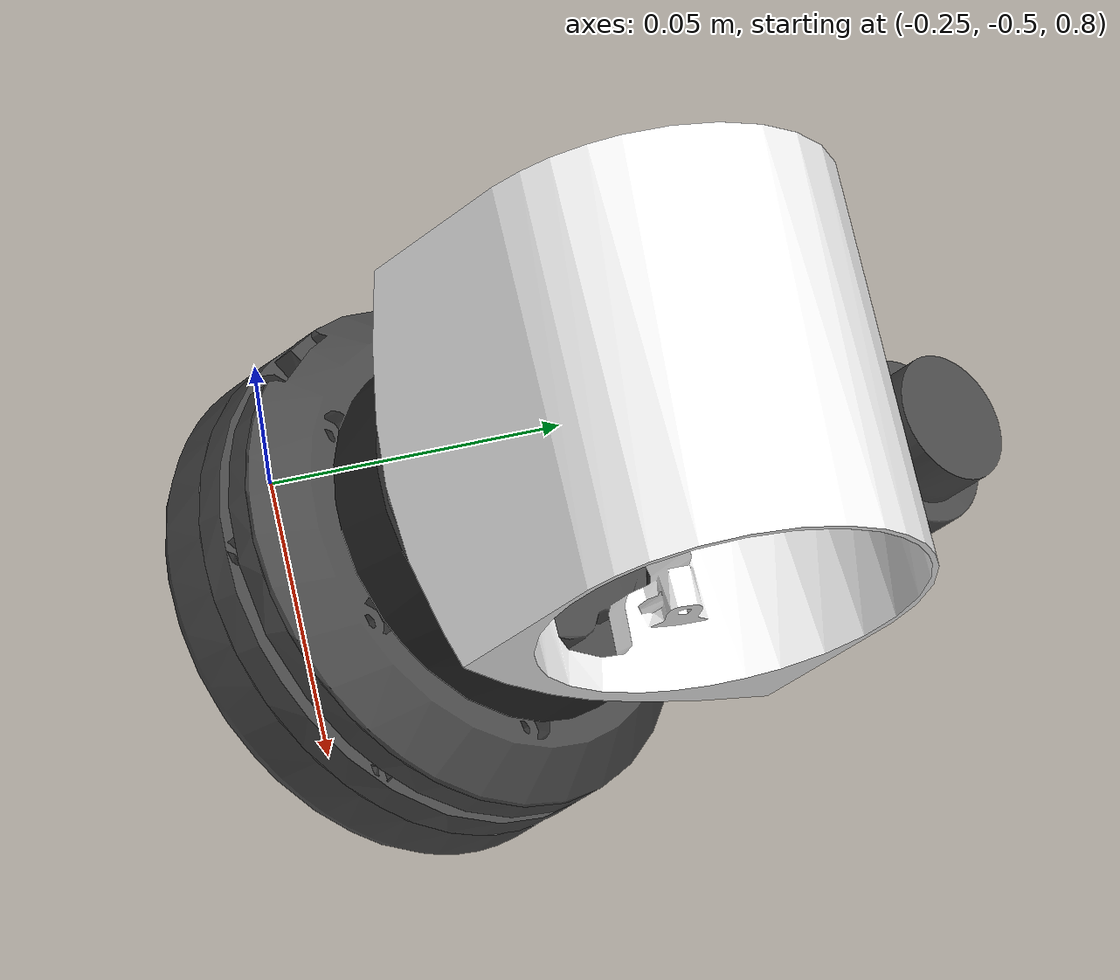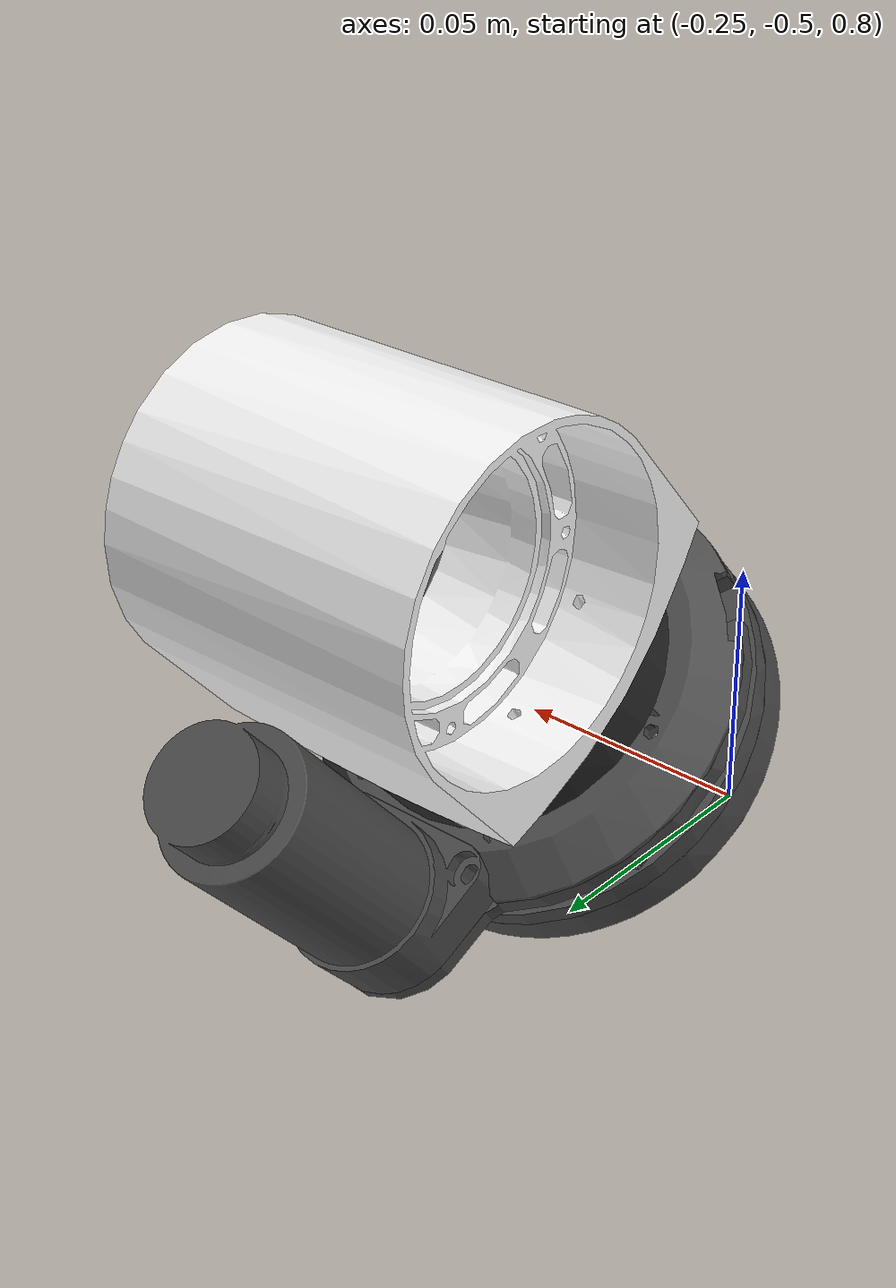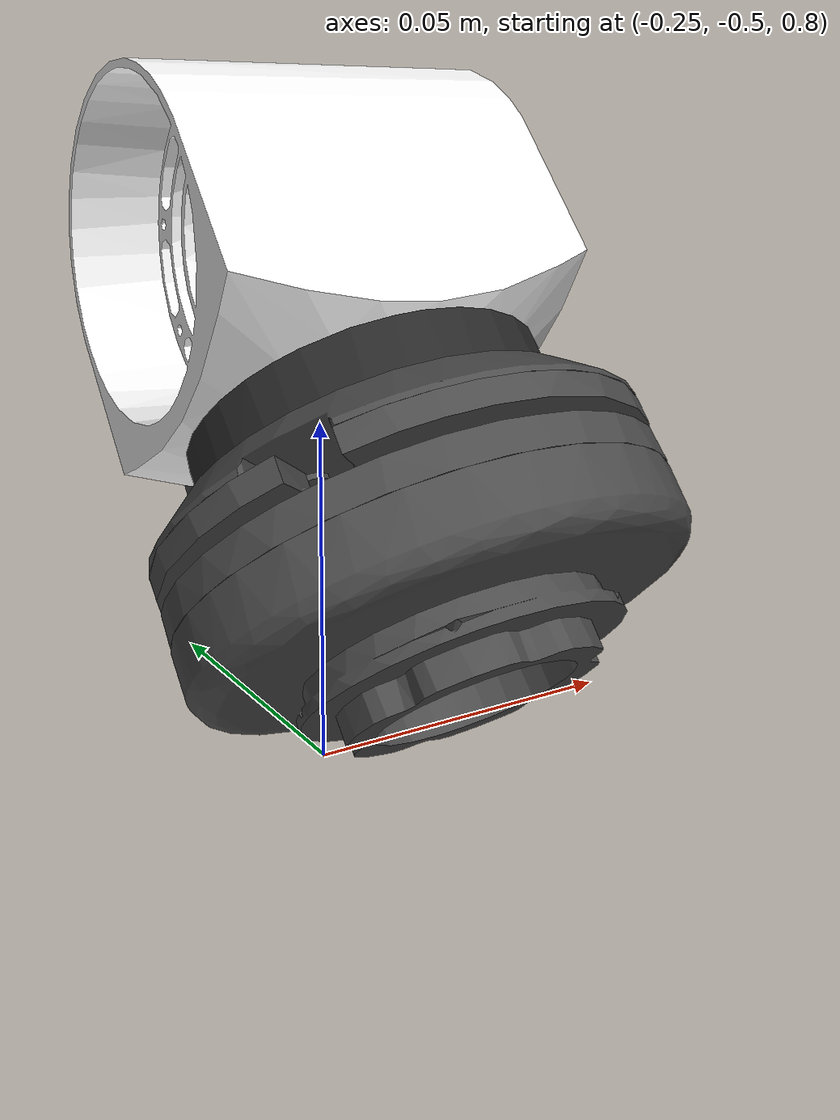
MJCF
<mujoco model="right_arm_6">
  <default>
    <default class="visual">
      <geom group="2" type="mesh" contype="0" conaffinity="0"/>
    </default>
    <default class="collision">
      <geom group="3" type="mesh"/>
    </default>
  </default>
  <asset>
    <material name="152,170,175_8.001" specular="1.0" shininess="0.2" rgba="0.596078 0.666667 0.686275 1.000000"/>
    <material name="247,247,247_29.001" specular="1.0" shininess="0.2" rgba="0.968627 0.968627 0.968627 1.000000"/>
    <material name="254,254,255_49.001" specular="1.0" shininess="0.2" rgba="0.996078 0.996078 1.000000 1.000000"/>
    <material name="39,39,39_4.009" specular="1.0" shininess="0.2" rgba="0.152941 0.152941 0.152941 1.000000"/>
    <material name="75,75,75_48.001" specular="1.0" shininess="0.2" rgba="0.294118 0.294118 0.294118 1.000000"/>
    <material name="75,75,75_49.001" specular="1.0" shininess="0.2" rgba="0.294118 0.294118 0.294118 1.000000"/>
    <material name="75,75,75_50.001" specular="1.0" shininess="0.2" rgba="0.294118 0.294118 0.294118 1.000000"/>
    <material name="75,75,75_52.001" specular="1.0" shininess="0.2" rgba="0.294118 0.294118 0.294118 1.000000"/>
    <material name="75,75,75_53.001" specular="1.0" shininess="0.2" rgba="0.294118 0.294118 0.294118 1.000000"/>
    <material name="75,75,75_54.001" specular="1.0" shininess="0.2" rgba="0.294118 0.294118 0.294118 1.000000"/>
    <mesh file="right_arm_6_0.obj"/>
    <mesh file="right_arm_6_1.obj"/>
    <mesh file="right_arm_6_2.obj"/>
    <mesh file="right_arm_6_3.obj"/>
    <mesh file="right_arm_6_4.obj"/>
    <mesh file="right_arm_6_5.obj"/>
    <mesh file="right_arm_6_6.obj"/>
    <mesh file="right_arm_6_7.obj"/>
    <mesh file="right_arm_6_8.obj"/>
    <mesh file="right_arm_6_9.obj"/>
  </asset>
  <worldbody>
    <body name="right_arm_6">
      <geom mesh="right_arm_6_0" material="75,75,75_48.001" class="visual"/>
      <geom mesh="right_arm_6_1" material="75,75,75_53.001" class="visual"/>
      <geom mesh="right_arm_6_2" material="75,75,75_50.001" class="visual"/>
      <geom mesh="right_arm_6_3" material="75,75,75_49.001" class="visual"/>
      <geom mesh="right_arm_6_4" material="39,39,39_4.009" class="visual"/>
      <geom mesh="right_arm_6_5" material="254,254,255_49.001" class="visual"/>
      <geom mesh="right_arm_6_6" material="75,75,75_54.001" class="visual"/>
      <geom mesh="right_arm_6_7" material="247,247,247_29.001" class="visual"/>
      <geom mesh="right_arm_6_8" material="152,170,175_8.001" class="visual"/>
      <geom mesh="right_arm_6_9" material="75,75,75_52.001" class="visual"/>
      <geom mesh="right_arm_6_0" class="collision"/>
      <geom mesh="right_arm_6_1" class="collision"/>
      <geom mesh="right_arm_6_2" class="collision"/>
      <geom mesh="right_arm_6_3" class="collision"/>
      <geom mesh="right_arm_6_4" class="collision"/>
      <geom mesh="right_arm_6_5" class="collision"/>
      <geom mesh="right_arm_6_6" class="collision"/>
      <geom mesh="right_arm_6_7" class="collision"/>
      <geom mesh="right_arm_6_8" class="collision"/>
      <geom mesh="right_arm_6_9" class="collision"/>
    </body>
  </worldbody>
</mujoco>
